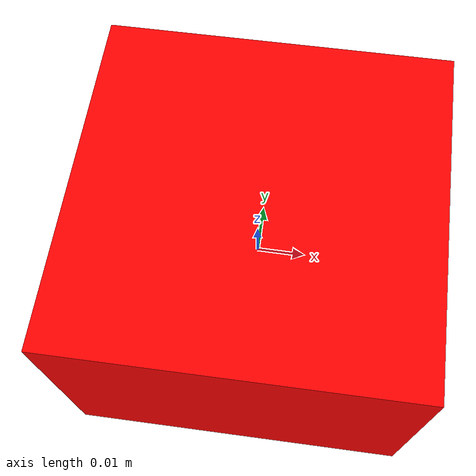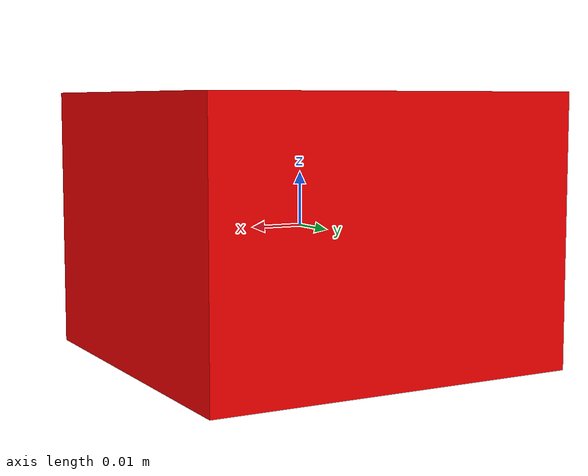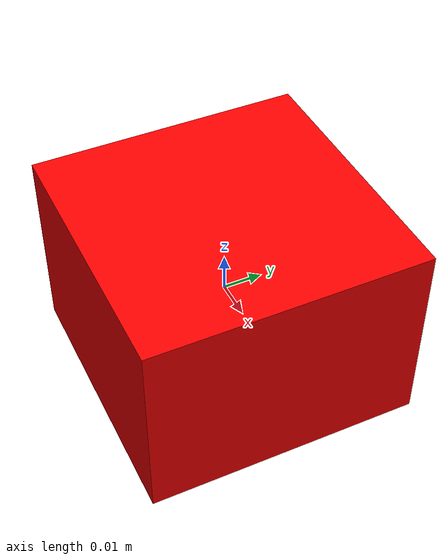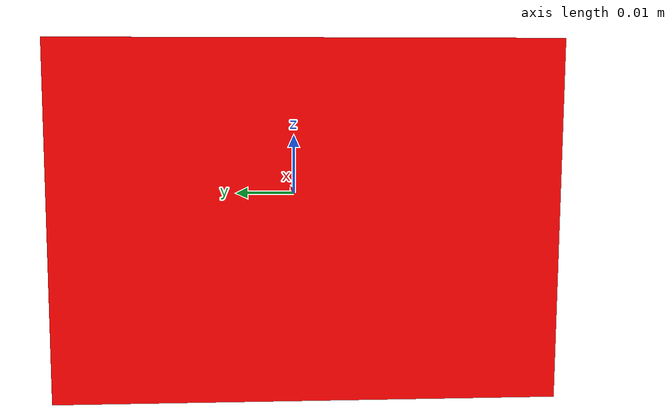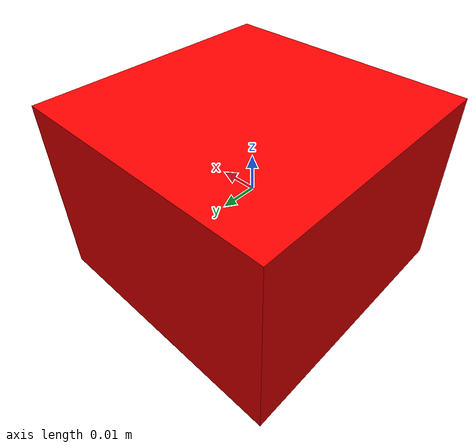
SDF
<?xml version="1.0"?>
<sdf version="1.7">
  <model name="box">
    <link name="box_link">
      <inertial>
        <pose>0.0 0.0 0.0 0.0 0.0 0.0</pose>
        <mass>0.8</mass>
        <inertia>
          <ixx>0.000493</ixx>
          <ixy>0</ixy>
          <ixz>0</ixz>
          <iyy>0.000493</iyy>
          <iyz>0</iyz>
          <izz>0.000653</izz>
        </inertia>
      </inertial>
      <visual name="visual">
        <pose>0 0 0. 0 0 0</pose>
        <geometry>
          <box>
            <size>0.07 0.07 0.05</size>
          </box>
        </geometry>
        <material>
         <diffuse>1 0 0 1.0</diffuse>
        </material>
      </visual>
      <collision name="collision">
        <pose>0 0 0. 0 0 0</pose>
        <geometry>
          <box>
            <size>0.07 0.07 0.05</size>
          </box>
        </geometry>
        <!-- From https://github.com/bernhardpg/planning-through-contact/blob/main/planning_through_contact/simulation/models/t_pusher.sdf -->
        <drake:proximity_properties>
          <drake:compliant_hydroelastic/>
          <drake:hunt_crossley_dissipation>3.0</drake:hunt_crossley_dissipation>
          <drake:hydroelastic_modulus>1e7</drake:hydroelastic_modulus>
          <drake:mesh_resolution_hint>0.005</drake:mesh_resolution_hint>
          <drake:mu_dynamic>0.5</drake:mu_dynamic>
          <drake:mu_static>0.5</drake:mu_static>
        </drake:proximity_properties>
      </collision>
    </link>
    <frame name="box_center">
      <pose relative_to="box_link">0 0 0. 0 0 0</pose>
    </frame>
  </model>
</sdf>
